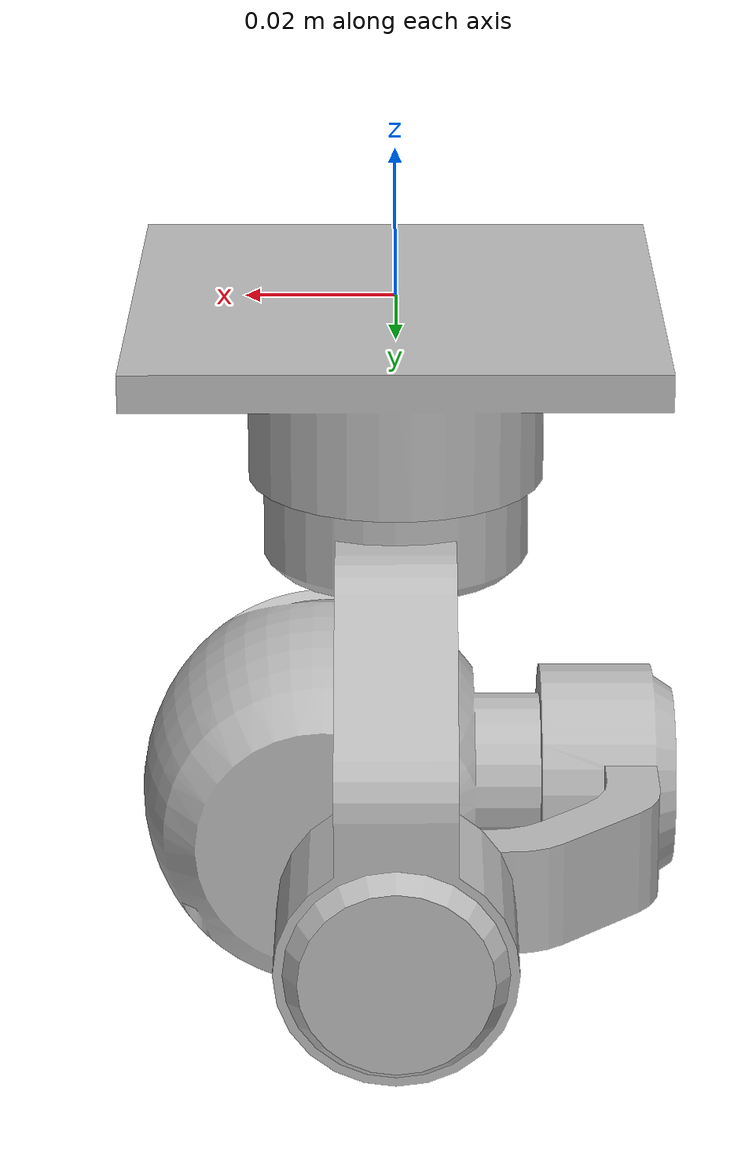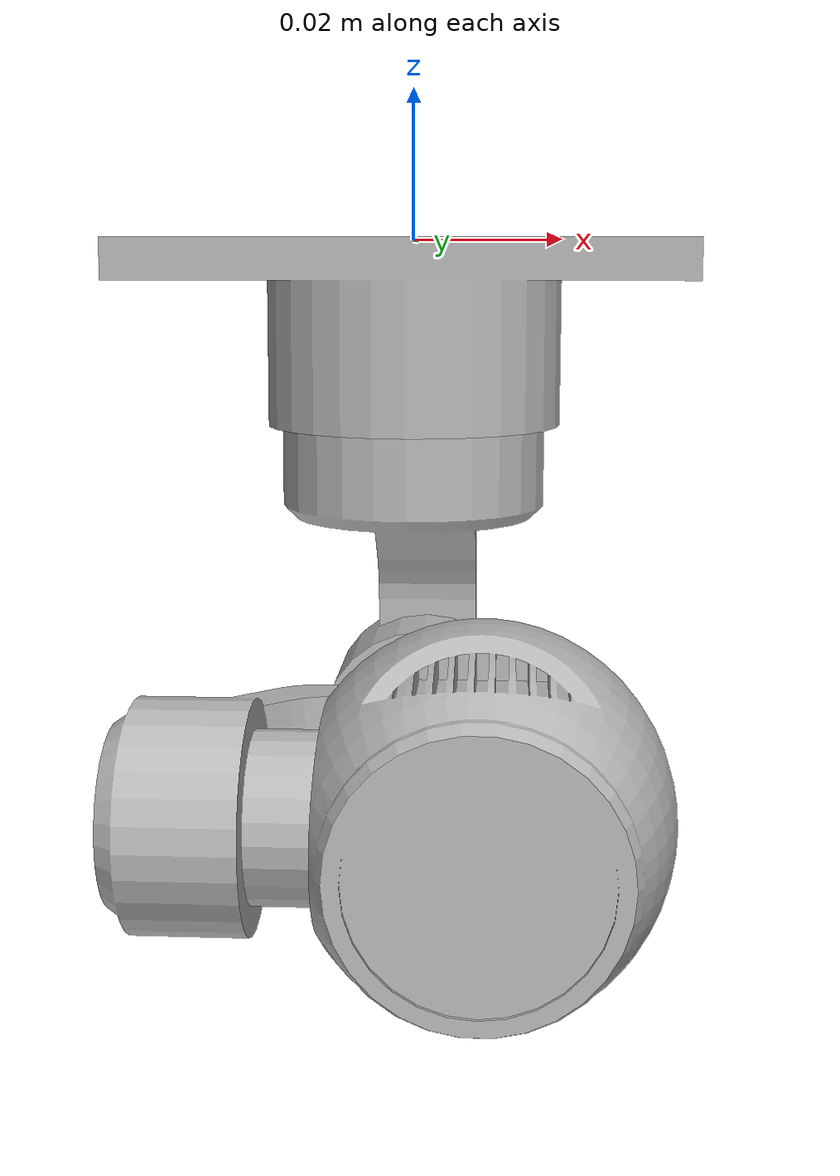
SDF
<sdf version='1.7'>
  <model name='my_gimbal_3d'>
    <link name='base_link'>
      <inertial>
        <pose>-0 0 -0.004539 0 -0 0</pose>
        <mass>0.078458</mass>
        <inertia>
          <ixx>3.1364e-05</ixx>
          <ixy>2.356e-21</ixy>
          <ixz>1.6956e-21</ixz>
          <iyy>3.1364e-05</iyy>
          <iyz>1.4274e-21</iyz>
          <izz>5.8255e-05</izz>
        </inertia>
      </inertial>
      <collision name='base_link_collision'>
        <pose>0 0 0 0 -0 0</pose>
        <geometry>
          <mesh>
            <scale>1 1 1</scale>
            <uri>model://my_gimbal_3d/meshes/base_link.STL</uri>
          </mesh>
        </geometry>
      </collision>
      <visual name='base_link_visual'>
        <pose>0 0 0 0 -0 0</pose>
        <geometry>
          <mesh>
            <scale>1 1 1</scale>
            <uri>model://my_gimbal_3d/meshes/base_link.STL</uri>
          </mesh>
        </geometry>
      </visual>
    </link>
    <joint name='pan' type='revolute'>
      <pose relative_to='base_link'>0 0 -0.005 1.5708 -0 0</pose>
      <parent>base_link</parent>
      <child>1st_link</child>
      <axis>
        <xyz>0 1 0</xyz>
        <limit>
          <lower>-1.575</lower>
          <upper>1.575</upper>
        </limit>
        <dynamics>
          <damping>0.2</damping>
          <friction>0.00</friction>
          <spring_reference>0</spring_reference>
          <spring_stiffness>0</spring_stiffness>
        </dynamics>
      </axis>
    </joint>
    <link name='1st_link'>
      <pose relative_to='pan'>0 0 0 0 -0 0</pose>
      <inertial>
        <pose>0 -0.036892 -0.016252 0 -0 0</pose>
        <mass>0.14774</mass>
        <inertia>
          <ixx>0.00016878</ixx>
          <ixy>2.5966e-21</ixy>
          <ixz>2.3862e-21</ixz>
          <iyy>7.3688e-05</iyy>
          <iyz>-6.9072e-05</iyz>
          <izz>0.00011514</izz>
        </inertia>
      </inertial>
      <collision name='1st_link_collision'>
        <pose>0 0 0 0 -0 0</pose>
        <geometry>
          <mesh>
            <scale>1 1 1</scale>
            <uri>model://my_gimbal_3d/meshes/1st_link.STL</uri>
          </mesh>
        </geometry>
      </collision>
      <visual name='1st_link_visual'>
        <pose>0 0 0 0 -0 0</pose>
        <geometry>
          <mesh>
            <scale>1 1 1</scale>
            <uri>model://my_gimbal_3d/meshes/1st_link.STL</uri>
          </mesh>
        </geometry>
      </visual>
    </link>
    <joint name='roll' type='revolute'>
      <pose relative_to='1st_link'>0 -0.07165 0 0 0 0</pose>
      <parent>1st_link</parent>
      <child>2nd_link</child>
      <axis>
        <xyz>0 0 1</xyz>
        <limit>
          <lower>-0.7854</lower>
          <upper>0.7854</upper>
        </limit>
        <dynamics>
          <damping>0.001</damping>
          <friction>0.00</friction>
          <spring_reference>0</spring_reference>
          <spring_stiffness>0</spring_stiffness>
        </dynamics>
      </axis>
    </joint>
    <link name='2nd_link'>
      <pose relative_to='roll'>0 0 0 0 -0 0</pose>
      <inertial>
        <pose>-0.022016 0 0.001912 0 -0 0</pose>
        <mass>0.065317</mass>
        <inertia>
          <ixx>2.614e-05</ixx>
          <ixy>1.2607e-22</ixy>
          <ixz>1.2241e-05</ixz>
          <iyy>3.501e-05</iyy>
          <iyz>1.3965e-22</iyz>
          <izz>1.5317e-05</izz>
        </inertia>
      </inertial>
      <collision name='2nd_link_collision'>
        <pose>0 0 0 0 -0 0</pose>
        <geometry>
          <mesh>
            <scale>1 1 1</scale>
            <uri>model://my_gimbal_3d/meshes/2nd_link.STL</uri>
          </mesh>
        </geometry>
      </collision>
      <visual name='2nd_link_visual'>
        <pose>0 0 0 0 -0 0</pose>
        <geometry>
          <mesh>
            <scale>1 1 1</scale>
            <uri>model://my_gimbal_3d/meshes/2nd_link.STL</uri>
          </mesh>
        </geometry>
      </visual>
      <sensor name="roll_camera_imu" type="imu">
        <pose relative_to="2nd_link">0 0 0 -1.575 -1.575 0</pose>
        <always_on>1</always_on>
      </sensor>
    </link>
    <joint name='tilt' type='revolute'>
      <pose relative_to='2nd_link'>0 0 0.01595 0 0 0</pose>
      <parent>2nd_link</parent>
      <child>camera_link</child>
      <axis>
        <xyz>1 0 0</xyz>
        <limit>
          <lower>-0.7854</lower>
          <upper>2.3562</upper>
        </limit>
        <dynamics>
          <damping>0.001</damping>
          <friction>0.00</friction>
          <spring_reference>0</spring_reference>
          <spring_stiffness>0</spring_stiffness>
        </dynamics>
      </axis>
    </joint>
    <link name='camera_link'>
      <pose relative_to='tilt'>0 0 0 0 0 0</pose>
      <inertial>
        <pose>0.009192 -0.000788 -0.001434 0 0 0</pose>
        <mass>0.23523</mass>
        <inertia>
          <ixx>7.527e-05</ixx>
          <ixy>6.9626e-07</ixy>
          <ixz>6.3053e-07</ixz>
          <iyy>8.0649e-05</iyy>
          <iyz>7.1378e-07</iyz>
          <izz>6.9991e-05</izz>
        </inertia>
      </inertial>
      <collision name='camera_collision'>
        <pose>0 0 0 0 -0 0</pose>
        <geometry>
          <mesh>
            <scale>1 1 1</scale>
            <uri>model://my_gimbal_3d/meshes/camera.STL</uri>
          </mesh>
        </geometry>
      </collision>
      <visual name='camera_visual'>
        <pose>0 0 0 0 -0 0</pose>
        <geometry>
          <mesh>
            <scale>1 1 1</scale>
            <uri>model://my_gimbal_3d/meshes/camera.STL</uri>
          </mesh>
        </geometry>
      </visual>
      <sensor name="pitch_camera_imu" type="imu">
        <pose relative_to="camera_link">0 0 0 -1.575 0 0</pose>
        <always_on>1</always_on>
      </sensor>
    </link>
    <plugin name="gimbal_control" filename="libGimbalControllerPlugin.so" />
  </model>
</sdf>
